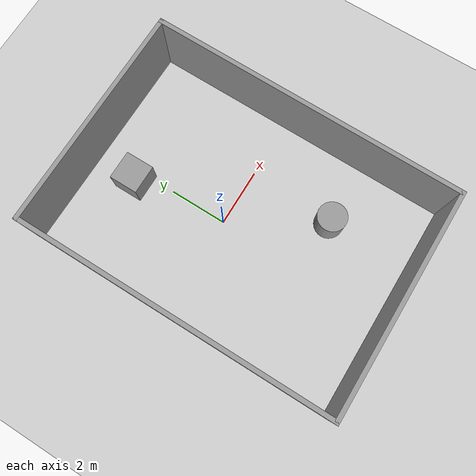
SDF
<sdf version="1.6">
 <world name="default">
  <light name="sun" type="directional">
   <pose>0 0 10 0 -0 0</pose>
   <diffuse>0.8 0.8 0.8 1</diffuse>
   <specular>0.2 0.2 0.2 1</specular>
   <attenuation>
    <range>1000</range>
    <constant>0.9</constant>
    <linear>0.01</linear>
    <quadratic>0.001</quadratic>
   </attenuation>
   <direction>-0.5 0.1 -0.9</direction>
  </light>
  <model name="ground_plane">
   <static>1</static>
   <link name="link">
    <collision name="collision">
     <geometry><plane><normal>0 0 1</normal><size>100 100</size></plane></geometry>
     <surface>
      <contact><collide_bitmask>65535</collide_bitmask></contact>
      <friction><ode><mu>100</mu><mu2>50</mu2></ode></friction>
     </surface>
    </collision>
    <visual name="visual">
     <cast_shadows>0</cast_shadows>
     <geometry><plane><normal>0 0 1</normal><size>100 100</size></plane></geometry>
     <material>
      <script><uri>file://media/materials/scripts/gazebo.material</uri><name>Gazebo/Grey</name></script>
     </material>
    </visual>
   </link>
  </model>
  <gravity>0 0 -9.8</gravity>
  <magnetic_field>6e-06 2.3e-05 -4.2e-05</magnetic_field>
  <atmosphere type="adiabatic"/>
  <physics name="default_physics" default="0" type="ode">
   <max_step_size>0.001</max_step_size>
   <real_time_factor>1</real_time_factor>
   <real_time_update_rate>1000</real_time_update_rate>
  </physics>
  <scene><ambient>0.4 0.4 0.4 1</ambient><background>0.7 0.7 0.7 1</background><shadows>1</shadows></scene>
  <audio><device>default</device></audio>
  <spherical_coordinates>
   <surface_model>EARTH_WGS84</surface_model>
   <latitude_deg>0</latitude_deg>
   <longitude_deg>0</longitude_deg>
   <elevation>0</elevation>
   <heading_deg>0</heading_deg>
  </spherical_coordinates>
  <model name="custom">
   <pose>0.266448 -0.546917 0 0 -0 0</pose>
   <link name="Wall_10">
    <collision name="Wall_10_Collision">
     <geometry><box><size>7.80338 0.15 2.5</size></box></geometry>
     <pose>0 0 1.25 0 -0 0</pose>
    </collision>
    <visual name="Wall_10_Visual">
     <pose>0 0 1.25 0 -0 0</pose>
     <geometry><box><size>7.80338 0.15 2.5</size></box></geometry>
     <material>
      <script><uri>file://media/materials/scripts/gazebo.material</uri><name>Gazebo/Grey</name></script>
      <ambient>1 1 1 1</ambient>
     </material>
     <meta><layer>0</layer></meta>
    </visual>
    <pose>0 5.39832 0 0 -0 -0.006951</pose>
   </link>
   <link name="Wall_6">
    <collision name="Wall_6_Collision">
     <geometry><box><size>10.9469 0.15 2.5</size></box></geometry>
     <pose>0 0 1.25 0 -0 0</pose>
    </collision>
    <visual name="Wall_6_Visual">
     <pose>0 0 1.25 0 -0 0</pose>
     <geometry><box><size>10.9469 0.15 2.5</size></box></geometry>
     <material>
      <script><uri>file://media/materials/scripts/gazebo.material</uri><name>Gazebo/Grey</name></script>
      <ambient>1 1 1 1</ambient>
     </material>
     <meta><layer>0</layer></meta>
    </visual>
    <pose>3.8 -0.026675 0 0 -0 -1.57572</pose>
   </link>
   <link name="Wall_7">
    <collision name="Wall_7_Collision">
     <geometry><box><size>7.75 0.15 2.5</size></box></geometry>
     <pose>0 0 1.25 0 -0 0</pose>
    </collision>
    <visual name="Wall_7_Visual">
     <pose>0 0 1.25 0 -0 0</pose>
     <geometry><box><size>7.75 0.15 2.5</size></box></geometry>
     <material>
      <script><uri>file://media/materials/scripts/gazebo.material</uri><name>Gazebo/Grey</name></script>
      <ambient>1 1 1 1</ambient>
     </material>
     <meta><layer>0</layer></meta>
    </visual>
    <pose>-0.0266 -5.42507 0 0 -0 3.14159</pose>
   </link>
   <link name="Wall_8">
    <collision name="Wall_8_Collision">
     <geometry><box><size>11 0.15 2.5</size></box></geometry>
     <pose>0 0 1.25 0 -0 0</pose>
    </collision>
    <visual name="Wall_8_Visual">
     <pose>0 0 1.25 0 -0 0</pose>
     <geometry><box><size>11 0.15 2.5</size></box></geometry>
     <material>
      <script><uri>file://media/materials/scripts/gazebo.material</uri><name>Gazebo/Grey</name></script>
      <ambient>1 1 1 1</ambient>
     </material>
     <meta><layer>0</layer></meta>
    </visual>
    <pose>-3.8266 -7.5e-05 0 0 -0 1.5708</pose>
   </link>
   <static>1</static>
  </model>
  <model name="unit_box">
   <pose>-0.338115 3.27888 0.499995 -1e-05 -0 0</pose>
   <link name="link">
    <inertial>
     <mass>1</mass>
     <inertia>
      <ixx>0.166667</ixx>
      <ixy>0</ixy>
      <ixz>0</ixz>
      <iyy>0.166667</iyy>
      <iyz>0</iyz>
      <izz>0.166667</izz>
     </inertia>
    </inertial>
    <collision name="collision"><geometry><box><size>1 1 1</size></box></geometry></collision>
    <visual name="visual">
     <geometry><box><size>1 1 1</size></box></geometry>
     <material>
      <script><name>Gazebo/Grey</name><uri>file://media/materials/scripts/gazebo.material</uri></script>
     </material>
    </visual>
   </link>
  </model>
  <model name="unit_cylinder">
   <pose>1.80177 -3.02313 0.499997 3e-06 4e-06 -0</pose>
   <link name="link">
    <inertial>
     <mass>1</mass>
     <inertia><ixx>0.145833</ixx><ixy>0</ixy><ixz>0</ixz><iyy>0.145833</iyy><iyz>0</iyz><izz>0.125</izz></inertia>
    </inertial>
    <collision name="collision">
     <geometry><cylinder><radius>0.5</radius><length>1</length></cylinder></geometry>
    </collision>
    <visual name="visual">
     <geometry><cylinder><radius>0.5</radius><length>1</length></cylinder></geometry>
     <material>
      <script><name>Gazebo/Grey</name><uri>file://media/materials/scripts/gazebo.material</uri></script>
     </material>
    </visual>
   </link>
  </model>
 </world>
</sdf>
